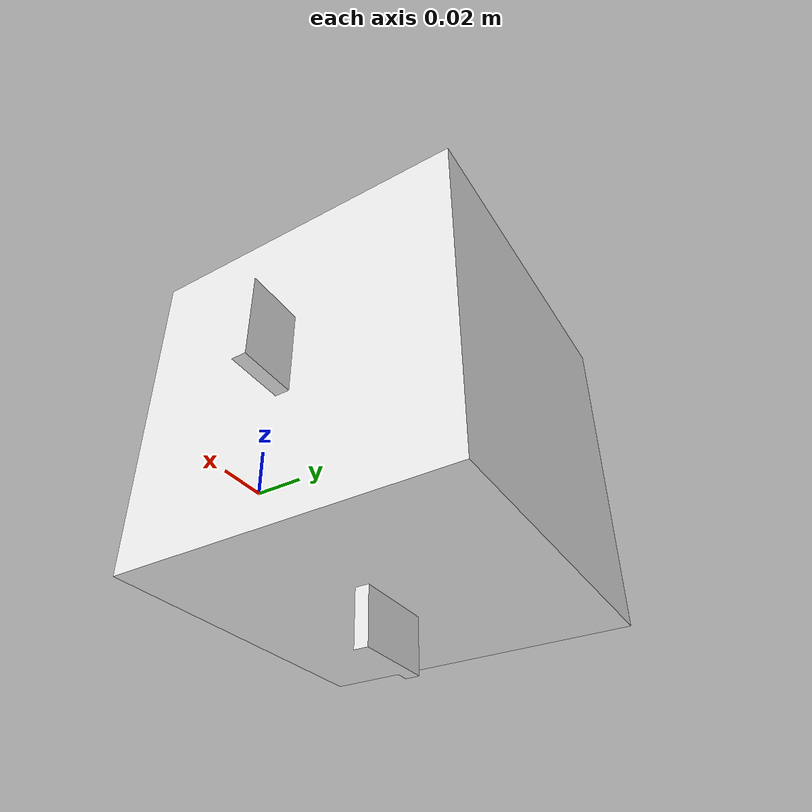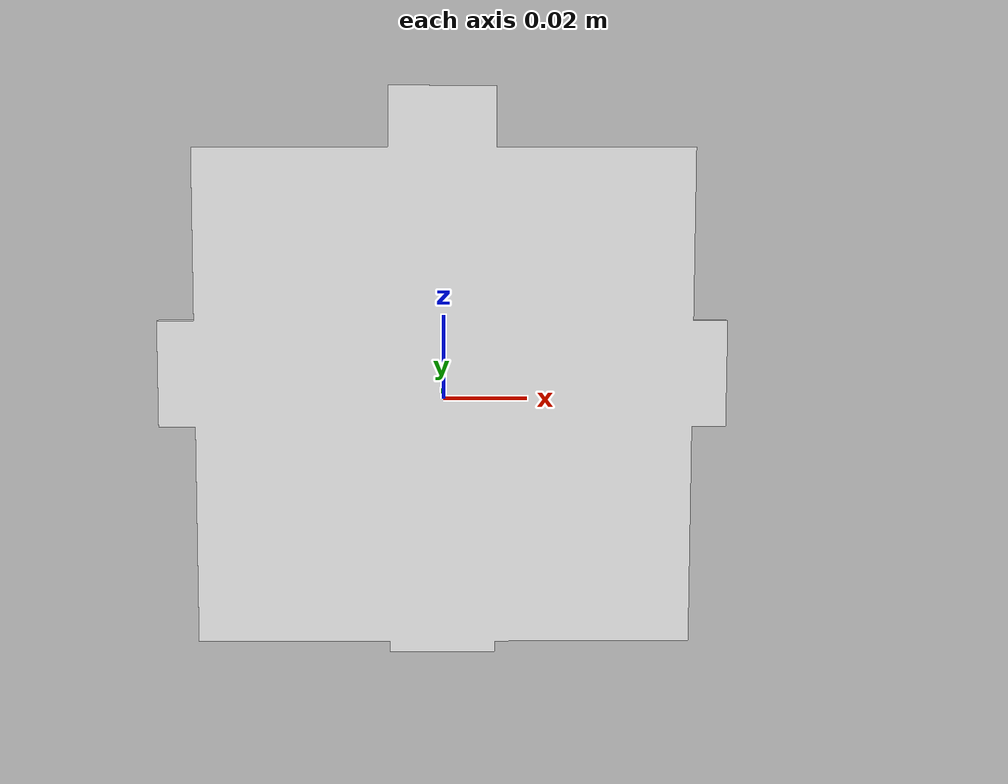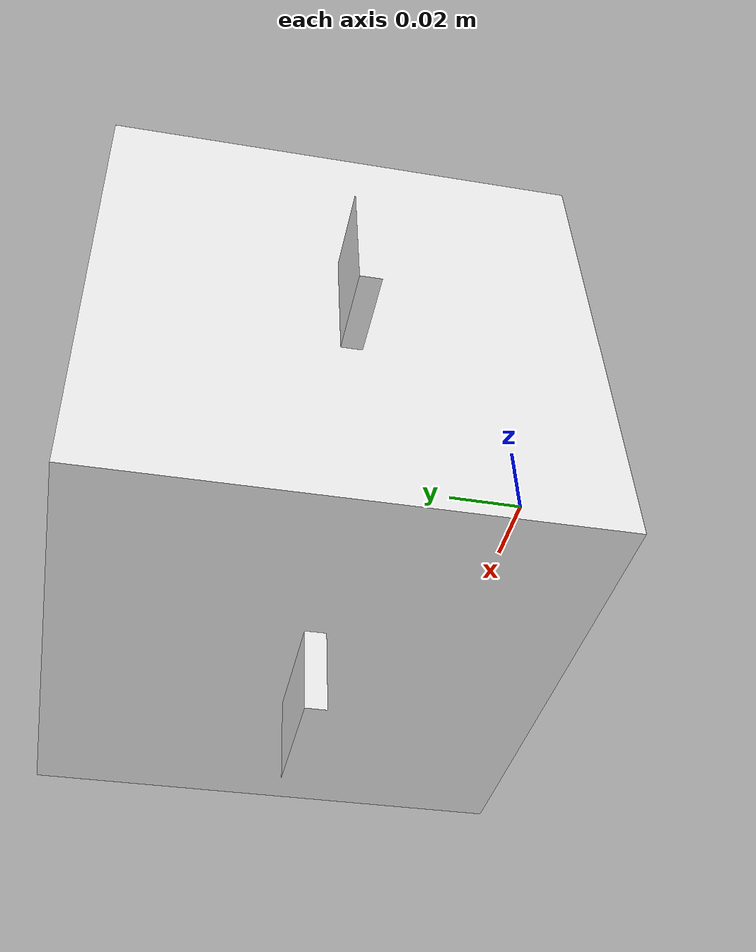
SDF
<?xml version="1.0"?>
<sdf version="1.7">
  <model name="iss_pack">

    <link name="pack">
      <pose>0.0 0.0 0.0 0.0 0.0 0.0</pose>
      <inertial>
        <pose>0.0 0.0625 0.0 0.0 0.0 0.0</pose>
        <inertia>
          <ixx>0.005</ixx>
          <ixy>0.0</ixy>
          <ixz>0.0</ixz>
          <iyy>0.005</iyy>
          <iyz>0.0</iyz>
          <izz>0.005</izz>
        </inertia>
        <mass>1.0</mass>
      </inertial>
      <visual name="visual">
        <geometry>
          <mesh>
            <uri>model://iss_pack/meshes/iss_pack.stl</uri>
            <scale>0.001 0.001 0.001</scale>
          </mesh>
        </geometry>
        <material>
          <script>
            <uri>file://media/materials/scripts/gazebo.material</uri>
            <name>Gazebo/White</name>
          </script>
        </material>
      </visual>
      <collision name="collision">
        <geometry>
          <mesh>
            <uri>model://iss_pack/meshes/iss_pack.stl</uri>
            <scale>0.001 0.001 0.001</scale>
          </mesh>
        </geometry>
      </collision>
    </link>

  </model>
</sdf>
